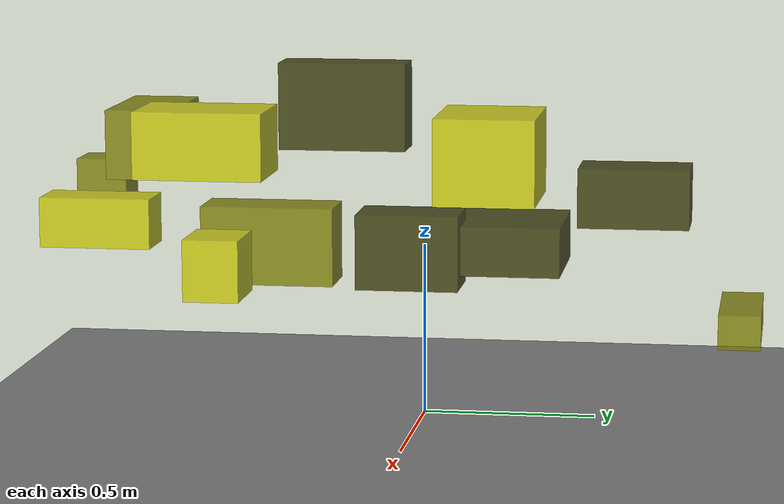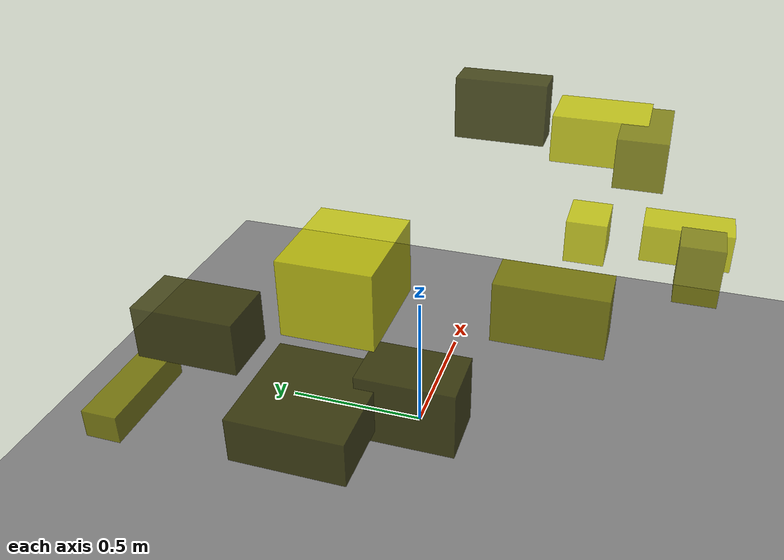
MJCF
<?xml version="1.0"?>
<mujoco model="obstacle_scene">
  <compiler angle="radian" coordinate="local"/>
  <option timestep="0.001" gravity="0 0 -9.81"/>

  <asset>
    <material name="obstacle_mat" rgba="0.8 0.8 0.0 0.8"/>
    <material name="ground_mat" rgba="0.5 0.5 0.5 1"/>
  </asset>

  <worldbody>
    <!-- Ground plane -->
    <geom name="ground" type="plane" size="3 3 0.1" material="ground_mat"/>

    <!-- Obstacles -->
    <body name="obstacle_0" pos="0.673942 -0.120770 0.989051">
      <geom name="obs_0" type="box" size="0.065025 0.169122 0.115450" rgba="0.2 0.2 0.0 0.8"/>
    </body>
    <body name="obstacle_1" pos="0.662507 -0.649337 0.890605">
      <geom name="obs_1" type="box" size="0.171970 0.088465 0.091772" rgba="0.5 0.5 0.0 0.8"/>
    </body>
    <body name="obstacle_2" pos="0.490673 -0.843805 0.633716">
      <geom name="obs_2" type="box" size="0.074103 0.154976 0.069189" rgba="0.8 0.8 0.0 0.8"/>
    </body>
    <body name="obstacle_3" pos="-0.430979 0.586466 0.591828">
      <geom name="obs_3" type="box" size="0.098998 0.168745 0.089943" rgba="0.2 0.2 0.0 0.8"/>
    </body>
    <body name="obstacle_4" pos="-0.392506 0.914057 0.219493">
      <geom name="obs_4" type="box" size="0.195317 0.063516 0.051717" rgba="0.5 0.5 0.0 0.8"/>
    </body>
    <body name="obstacle_5" pos="0.760324 -0.484531 0.894756">
      <geom name="obs_5" type="box" size="0.118204 0.172612 0.089628" rgba="0.8 0.8 0.0 0.8"/>
    </body>
    <body name="obstacle_6" pos="-0.380076 -0.096626 0.419989">
      <geom name="obs_6" type="box" size="0.098074 0.157397 0.115586" rgba="0.2 0.2 0.0 0.8"/>
    </body>
    <body name="obstacle_7" pos="0.237246 -0.886580 0.671158">
      <geom name="obs_7" type="box" size="0.069107 0.071241 0.105020" rgba="0.5 0.5 0.0 0.8"/>
    </body>
    <body name="obstacle_8" pos="0.625213 -0.485416 0.535274">
      <geom name="obs_8" type="box" size="0.096997 0.076396 0.084486" rgba="0.8 0.8 0.0 0.8"/>
    </body>
    <body name="obstacle_9" pos="-0.526183 0.180966 0.421564">
      <geom name="obs_9" type="box" size="0.192304 0.184176 0.075796" rgba="0.2 0.2 0.0 0.8"/>
    </body>
    <body name="obstacle_10" pos="0.095012 -0.437141 0.512614">
      <geom name="obs_10" type="box" size="0.085106 0.193011 0.112913" rgba="0.5 0.5 0.0 0.8"/>
    </body>
    <body name="obstacle_11" pos="-0.242177 0.163163 0.730124">
      <geom name="obs_11" type="box" size="0.178693 0.150838 0.129984" rgba="0.8 0.8 0.0 0.8"/>
    </body>
  </worldbody>
</mujoco>
